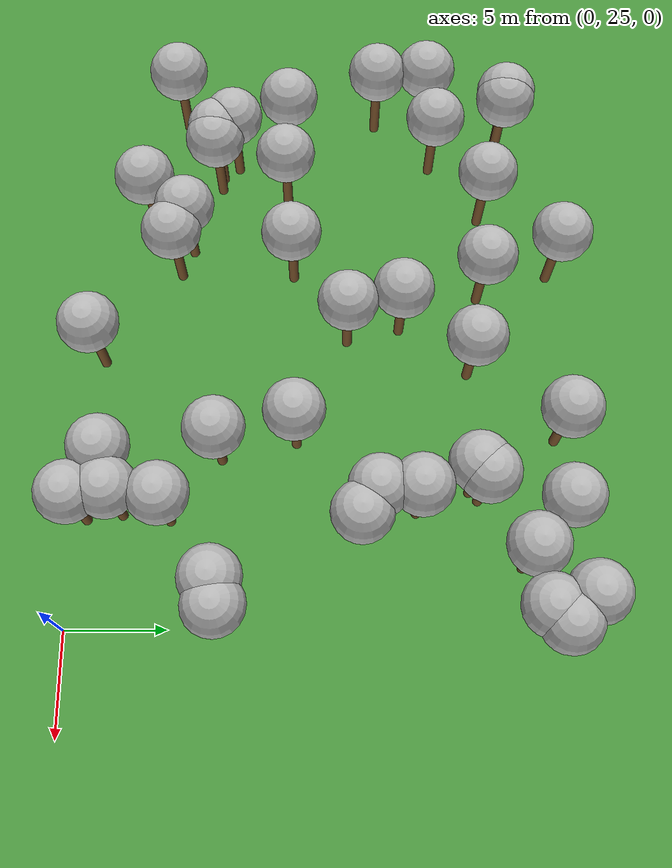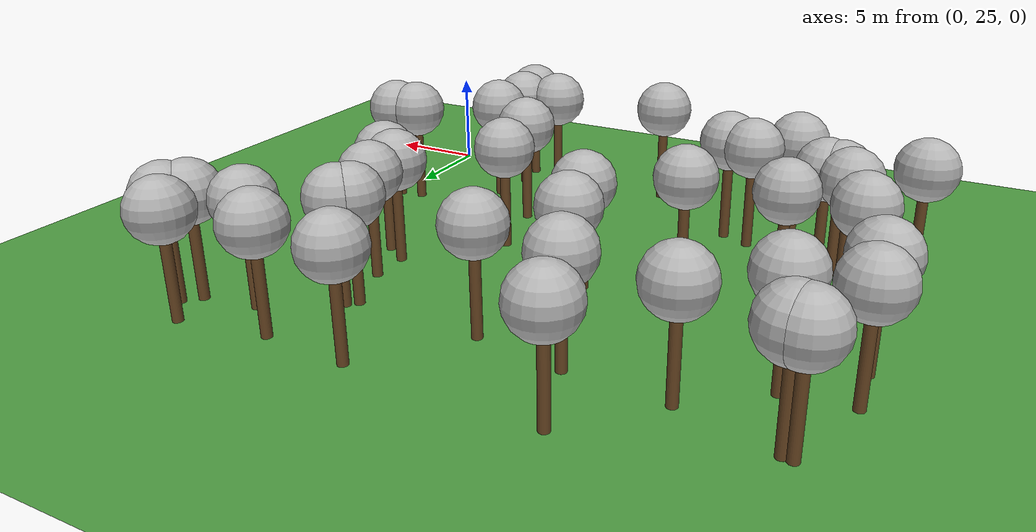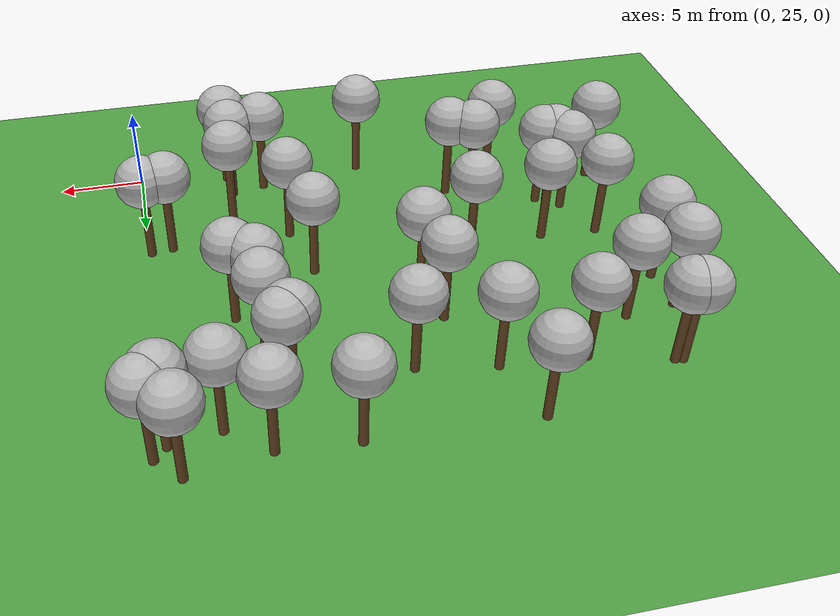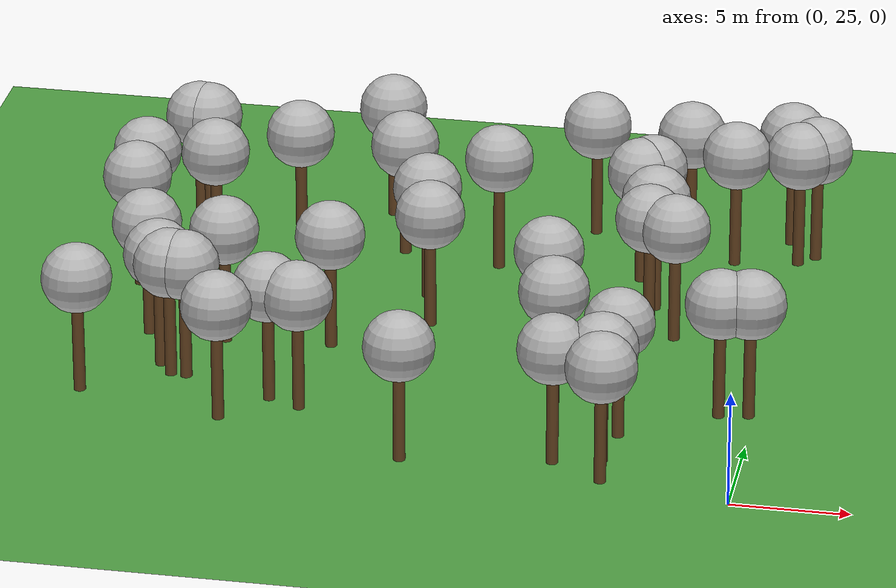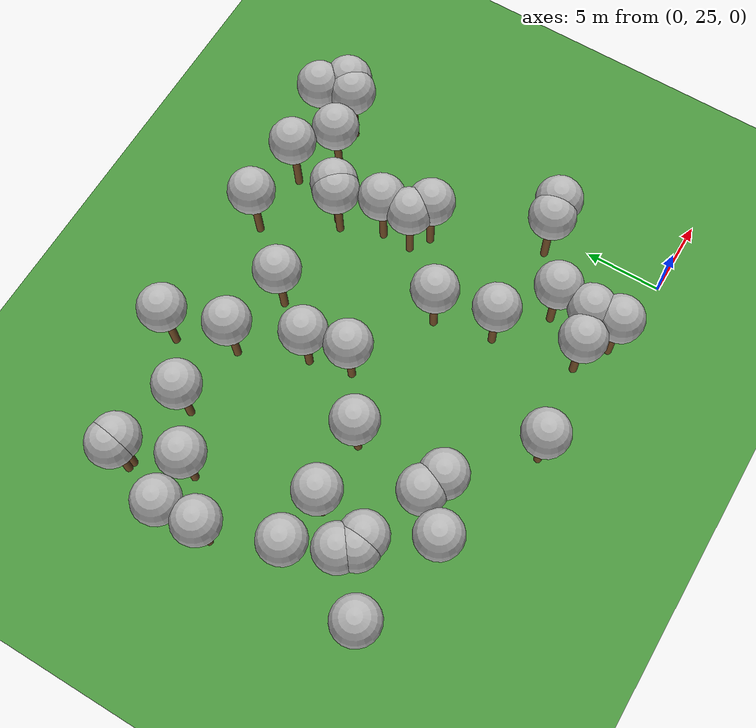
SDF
<sdf version="1.5">
 <world name="default">
  <model name="tree_simple492">
   <static>1</static>
   <link name="link">
    <pose>0 0 0.1 0 -0 0</pose>
    <collision name="collision_trunk">
     <pose>0 0 2 0 -0 0</pose>
     <geometry><cylinder><radius>0.25</radius><length>4</length></cylinder></geometry>
    </collision>
    <collision name="collision_treetop">
     <pose>0 0 5.2 0 -0 0</pose>
     <geometry><sphere><radius>1.5</radius></sphere></geometry>
    </collision>
    <visual name="trunk">
     <pose>0 0 2 0 -0 0</pose>
     <geometry><cylinder><radius>0.25</radius><length>4</length></cylinder></geometry>
     <material>
      <script>
       <uri>model://tree_simple/scripts</uri>
       <uri>model://tree_simple/materials/textures</uri>
       <name>TreeSimple/Trunk</name>
      </script>
     </material>
    </visual>
    <visual name="treetop">
     <pose>0 0 5.2 0 -0 0</pose>
     <geometry><sphere><radius>1.5</radius></sphere></geometry>
     <material>
      <script>
       <uri>model://tree_simple/scripts</uri>
       <uri>model://tree_simple/materials/textures</uri>
       <name>TreeSimple/Treetop</name>
      </script>
     </material>
    </visual>
   </link>
   <pose>-7.60604313382 27.1336498888 0 0 -0 0</pose>
  </model>
  <model name="tree_simple483">
   <static>1</static>
   <link name="link">
    <pose>0 0 0.1 0 -0 0</pose>
    <collision name="collision_trunk">
     <pose>0 0 2 0 -0 0</pose>
     <geometry><cylinder><radius>0.25</radius><length>4</length></cylinder></geometry>
    </collision>
    <collision name="collision_treetop">
     <pose>0 0 5.2 0 -0 0</pose>
     <geometry><sphere><radius>1.5</radius></sphere></geometry>
    </collision>
    <visual name="trunk">
     <pose>0 0 2 0 -0 0</pose>
     <geometry><cylinder><radius>0.25</radius><length>4</length></cylinder></geometry>
     <material>
      <script>
       <uri>model://tree_simple/scripts</uri>
       <uri>model://tree_simple/materials/textures</uri>
       <name>TreeSimple/Trunk</name>
      </script>
     </material>
    </visual>
    <visual name="treetop">
     <pose>0 0 5.2 0 -0 0</pose>
     <geometry><sphere><radius>1.5</radius></sphere></geometry>
     <material>
      <script>
       <uri>model://tree_simple/scripts</uri>
       <uri>model://tree_simple/materials/textures</uri>
       <name>TreeSimple/Treetop</name>
      </script>
     </material>
    </visual>
   </link>
   <pose>-6.65162129766 44.7613363002 0 0 -0 0</pose>
  </model>
  <model name="tree_simple477">
   <static>1</static>
   <link name="link">
    <pose>0 0 0.1 0 -0 0</pose>
    <collision name="collision_trunk">
     <pose>0 0 2 0 -0 0</pose>
     <geometry><cylinder><radius>0.25</radius><length>4</length></cylinder></geometry>
    </collision>
    <collision name="collision_treetop">
     <pose>0 0 5.2 0 -0 0</pose>
     <geometry><sphere><radius>1.5</radius></sphere></geometry>
    </collision>
    <visual name="trunk">
     <pose>0 0 2 0 -0 0</pose>
     <geometry><cylinder><radius>0.25</radius><length>4</length></cylinder></geometry>
     <material>
      <script>
       <uri>model://tree_simple/scripts</uri>
       <uri>model://tree_simple/materials/textures</uri>
       <name>TreeSimple/Trunk</name>
      </script>
     </material>
    </visual>
    <visual name="treetop">
     <pose>0 0 5.2 0 -0 0</pose>
     <geometry><sphere><radius>1.5</radius></sphere></geometry>
     <material>
      <script>
       <uri>model://tree_simple/scripts</uri>
       <uri>model://tree_simple/materials/textures</uri>
       <name>TreeSimple/Treetop</name>
      </script>
     </material>
    </visual>
   </link>
   <pose>-0.22927085135 32.6495918535 0 0 -0 0</pose>
  </model>
  <model name="tree_simple446">
   <static>1</static>
   <link name="link">
    <pose>0 0 0.1 0 -0 0</pose>
    <collision name="collision_trunk">
     <pose>0 0 2 0 -0 0</pose>
     <geometry><cylinder><radius>0.25</radius><length>4</length></cylinder></geometry>
    </collision>
    <collision name="collision_treetop">
     <pose>0 0 5.2 0 -0 0</pose>
     <geometry><sphere><radius>1.5</radius></sphere></geometry>
    </collision>
    <visual name="trunk">
     <pose>0 0 2 0 -0 0</pose>
     <geometry><cylinder><radius>0.25</radius><length>4</length></cylinder></geometry>
     <material>
      <script>
       <uri>model://tree_simple/scripts</uri>
       <uri>model://tree_simple/materials/textures</uri>
       <name>TreeSimple/Trunk</name>
      </script>
     </material>
    </visual>
    <visual name="treetop">
     <pose>0 0 5.2 0 -0 0</pose>
     <geometry><sphere><radius>1.5</radius></sphere></geometry>
     <material>
      <script>
       <uri>model://tree_simple/scripts</uri>
       <uri>model://tree_simple/materials/textures</uri>
       <name>TreeSimple/Treetop</name>
      </script>
     </material>
    </visual>
   </link>
   <pose>-14.8873591434 38.8088683427 0 0 -0 0</pose>
  </model>
  <model name="tree_simple441">
   <static>1</static>
   <link name="link">
    <pose>0 0 0.1 0 -0 0</pose>
    <collision name="collision_trunk">
     <pose>0 0 2 0 -0 0</pose>
     <geometry><cylinder><radius>0.25</radius><length>4</length></cylinder></geometry>
    </collision>
    <collision name="collision_treetop">
     <pose>0 0 5.2 0 -0 0</pose>
     <geometry><sphere><radius>1.5</radius></sphere></geometry>
    </collision>
    <visual name="trunk">
     <pose>0 0 2 0 -0 0</pose>
     <geometry><cylinder><radius>0.25</radius><length>4</length></cylinder></geometry>
     <material>
      <script>
       <uri>model://tree_simple/scripts</uri>
       <uri>model://tree_simple/materials/textures</uri>
       <name>TreeSimple/Trunk</name>
      </script>
     </material>
    </visual>
    <visual name="treetop">
     <pose>0 0 5.2 0 -0 0</pose>
     <geometry><sphere><radius>1.5</radius></sphere></geometry>
     <material>
      <script>
       <uri>model://tree_simple/scripts</uri>
       <uri>model://tree_simple/materials/textures</uri>
       <name>TreeSimple/Treetop</name>
      </script>
     </material>
    </visual>
   </link>
   <pose>-25.4258718868 33.0017159702 0 0 -0 0</pose>
  </model>
  <model name="tree_simple436">
   <static>1</static>
   <link name="link">
    <pose>0 0 0.1 0 -0 0</pose>
    <collision name="collision_trunk">
     <pose>0 0 2 0 -0 0</pose>
     <geometry><cylinder><radius>0.25</radius><length>4</length></cylinder></geometry>
    </collision>
    <collision name="collision_treetop">
     <pose>0 0 5.2 0 -0 0</pose>
     <geometry><sphere><radius>1.5</radius></sphere></geometry>
    </collision>
    <visual name="trunk">
     <pose>0 0 2 0 -0 0</pose>
     <geometry><cylinder><radius>0.25</radius><length>4</length></cylinder></geometry>
     <material>
      <script>
       <uri>model://tree_simple/scripts</uri>
       <uri>model://tree_simple/materials/textures</uri>
       <name>TreeSimple/Trunk</name>
      </script>
     </material>
    </visual>
    <visual name="treetop">
     <pose>0 0 5.2 0 -0 0</pose>
     <geometry><sphere><radius>1.5</radius></sphere></geometry>
     <material>
      <script>
       <uri>model://tree_simple/scripts</uri>
       <uri>model://tree_simple/materials/textures</uri>
       <name>TreeSimple/Treetop</name>
      </script>
     </material>
    </visual>
   </link>
   <pose>-12.9773602363 44.9895309953 0 0 -0 0</pose>
  </model>
  <model name="tree_simple425">
   <static>1</static>
   <link name="link">
    <pose>0 0 0.1 0 -0 0</pose>
    <collision name="collision_trunk">
     <pose>0 0 2 0 -0 0</pose>
     <geometry><cylinder><radius>0.25</radius><length>4</length></cylinder></geometry>
    </collision>
    <collision name="collision_treetop">
     <pose>0 0 5.2 0 -0 0</pose>
     <geometry><sphere><radius>1.5</radius></sphere></geometry>
    </collision>
    <visual name="trunk">
     <pose>0 0 2 0 -0 0</pose>
     <geometry><cylinder><radius>0.25</radius><length>4</length></cylinder></geometry>
     <material>
      <script>
       <uri>model://tree_simple/scripts</uri>
       <uri>model://tree_simple/materials/textures</uri>
       <name>TreeSimple/Trunk</name>
      </script>
     </material>
    </visual>
    <visual name="treetop">
     <pose>0 0 5.2 0 -0 0</pose>
     <geometry><sphere><radius>1.5</radius></sphere></geometry>
     <material>
      <script>
       <uri>model://tree_simple/scripts</uri>
       <uri>model://tree_simple/materials/textures</uri>
       <name>TreeSimple/Treetop</name>
      </script>
     </material>
    </visual>
   </link>
   <pose>-9.294152574 36.1907172759 0 0 -0 0</pose>
  </model>
  <model name="tree_simple409">
   <static>1</static>
   <link name="link">
    <pose>0 0 0.1 0 -0 0</pose>
    <collision name="collision_trunk">
     <pose>0 0 2 0 -0 0</pose>
     <geometry><cylinder><radius>0.25</radius><length>4</length></cylinder></geometry>
    </collision>
    <collision name="collision_treetop">
     <pose>0 0 5.2 0 -0 0</pose>
     <geometry><sphere><radius>1.5</radius></sphere></geometry>
    </collision>
    <visual name="trunk">
     <pose>0 0 2 0 -0 0</pose>
     <geometry><cylinder><radius>0.25</radius><length>4</length></cylinder></geometry>
     <material>
      <script>
       <uri>model://tree_simple/scripts</uri>
       <uri>model://tree_simple/materials/textures</uri>
       <name>TreeSimple/Trunk</name>
      </script>
     </material>
    </visual>
    <visual name="treetop">
     <pose>0 0 5.2 0 -0 0</pose>
     <geometry><sphere><radius>1.5</radius></sphere></geometry>
     <material>
      <script>
       <uri>model://tree_simple/scripts</uri>
       <uri>model://tree_simple/materials/textures</uri>
       <name>TreeSimple/Treetop</name>
      </script>
     </material>
    </visual>
   </link>
   <pose>-23.2045481925 35.7189479207 0 0 -0 0</pose>
  </model>
  <model name="tree_simple398">
   <static>1</static>
   <link name="link">
    <pose>0 0 0.1 0 -0 0</pose>
    <collision name="collision_trunk">
     <pose>0 0 2 0 -0 0</pose>
     <geometry><cylinder><radius>0.25</radius><length>4</length></cylinder></geometry>
    </collision>
    <collision name="collision_treetop">
     <pose>0 0 5.2 0 -0 0</pose>
     <geometry><sphere><radius>1.5</radius></sphere></geometry>
    </collision>
    <visual name="trunk">
     <pose>0 0 2 0 -0 0</pose>
     <geometry><cylinder><radius>0.25</radius><length>4</length></cylinder></geometry>
     <material>
      <script>
       <uri>model://tree_simple/scripts</uri>
       <uri>model://tree_simple/materials/textures</uri>
       <name>TreeSimple/Trunk</name>
      </script>
     </material>
    </visual>
    <visual name="treetop">
     <pose>0 0 5.2 0 -0 0</pose>
     <geometry><sphere><radius>1.5</radius></sphere></geometry>
     <material>
      <script>
       <uri>model://tree_simple/scripts</uri>
       <uri>model://tree_simple/materials/textures</uri>
       <name>TreeSimple/Treetop</name>
      </script>
     </material>
    </visual>
   </link>
   <pose>-5.63129043723 27.5985943182 0 0 -0 0</pose>
  </model>
  <model name="tree_simple359">
   <static>1</static>
   <link name="link">
    <pose>0 0 0.1 0 -0 0</pose>
    <collision name="collision_trunk">
     <pose>0 0 2 0 -0 0</pose>
     <geometry><cylinder><radius>0.25</radius><length>4</length></cylinder></geometry>
    </collision>
    <collision name="collision_treetop">
     <pose>0 0 5.2 0 -0 0</pose>
     <geometry><sphere><radius>1.5</radius></sphere></geometry>
    </collision>
    <visual name="trunk">
     <pose>0 0 2 0 -0 0</pose>
     <geometry><cylinder><radius>0.25</radius><length>4</length></cylinder></geometry>
     <material>
      <script>
       <uri>model://tree_simple/scripts</uri>
       <uri>model://tree_simple/materials/textures</uri>
       <name>TreeSimple/Trunk</name>
      </script>
     </material>
    </visual>
    <visual name="treetop">
     <pose>0 0 5.2 0 -0 0</pose>
     <geometry><sphere><radius>1.5</radius></sphere></geometry>
     <material>
      <script>
       <uri>model://tree_simple/scripts</uri>
       <uri>model://tree_simple/materials/textures</uri>
       <name>TreeSimple/Treetop</name>
      </script>
     </material>
    </visual>
   </link>
   <pose>-20.2372130322 30.6626507403 0 0 -0 0</pose>
  </model>
  <model name="tree_simple358">
   <static>1</static>
   <link name="link">
    <pose>0 0 0.1 0 -0 0</pose>
    <collision name="collision_trunk">
     <pose>0 0 2 0 -0 0</pose>
     <geometry><cylinder><radius>0.25</radius><length>4</length></cylinder></geometry>
    </collision>
    <collision name="collision_treetop">
     <pose>0 0 5.2 0 -0 0</pose>
     <geometry><sphere><radius>1.5</radius></sphere></geometry>
    </collision>
    <visual name="trunk">
     <pose>0 0 2 0 -0 0</pose>
     <geometry><cylinder><radius>0.25</radius><length>4</length></cylinder></geometry>
     <material>
      <script>
       <uri>model://tree_simple/scripts</uri>
       <uri>model://tree_simple/materials/textures</uri>
       <name>TreeSimple/Trunk</name>
      </script>
     </material>
    </visual>
    <visual name="treetop">
     <pose>0 0 5.2 0 -0 0</pose>
     <geometry><sphere><radius>1.5</radius></sphere></geometry>
     <material>
      <script>
       <uri>model://tree_simple/scripts</uri>
       <uri>model://tree_simple/materials/textures</uri>
       <name>TreeSimple/Treetop</name>
      </script>
     </material>
    </visual>
   </link>
   <pose>-28.1059387966 40.529489556 0 0 -0 0</pose>
  </model>
  <model name="tree_simple356">
   <static>1</static>
   <link name="link">
    <pose>0 0 0.1 0 -0 0</pose>
    <collision name="collision_trunk">
     <pose>0 0 2 0 -0 0</pose>
     <geometry><cylinder><radius>0.25</radius><length>4</length></cylinder></geometry>
    </collision>
    <collision name="collision_treetop">
     <pose>0 0 5.2 0 -0 0</pose>
     <geometry><sphere><radius>1.5</radius></sphere></geometry>
    </collision>
    <visual name="trunk">
     <pose>0 0 2 0 -0 0</pose>
     <geometry><cylinder><radius>0.25</radius><length>4</length></cylinder></geometry>
     <material>
      <script>
       <uri>model://tree_simple/scripts</uri>
       <uri>model://tree_simple/materials/textures</uri>
       <name>TreeSimple/Trunk</name>
      </script>
     </material>
    </visual>
    <visual name="treetop">
     <pose>0 0 5.2 0 -0 0</pose>
     <geometry><sphere><radius>1.5</radius></sphere></geometry>
     <material>
      <script>
       <uri>model://tree_simple/scripts</uri>
       <uri>model://tree_simple/materials/textures</uri>
       <name>TreeSimple/Treetop</name>
      </script>
     </material>
    </visual>
   </link>
   <pose>-2.83030100633 47.164879459 0 0 -0 0</pose>
  </model>
  <model name="tree_simple353">
   <static>1</static>
   <link name="link">
    <pose>0 0 0.1 0 -0 0</pose>
    <collision name="collision_trunk">
     <pose>0 0 2 0 -0 0</pose>
     <geometry><cylinder><radius>0.25</radius><length>4</length></cylinder></geometry>
    </collision>
    <collision name="collision_treetop">
     <pose>0 0 5.2 0 -0 0</pose>
     <geometry><sphere><radius>1.5</radius></sphere></geometry>
    </collision>
    <visual name="trunk">
     <pose>0 0 2 0 -0 0</pose>
     <geometry><cylinder><radius>0.25</radius><length>4</length></cylinder></geometry>
     <material>
      <script>
       <uri>model://tree_simple/scripts</uri>
       <uri>model://tree_simple/materials/textures</uri>
       <name>TreeSimple/Trunk</name>
      </script>
     </material>
    </visual>
    <visual name="treetop">
     <pose>0 0 5.2 0 -0 0</pose>
     <geometry><sphere><radius>1.5</radius></sphere></geometry>
     <material>
      <script>
       <uri>model://tree_simple/scripts</uri>
       <uri>model://tree_simple/materials/textures</uri>
       <name>TreeSimple/Treetop</name>
      </script>
     </material>
    </visual>
   </link>
   <pose>-8.45318639894 32.4449291469 0 0 -0 0</pose>
  </model>
  <model name="tree_simple343">
   <static>1</static>
   <link name="link">
    <pose>0 0 0.1 0 -0 0</pose>
    <collision name="collision_trunk">
     <pose>0 0 2 0 -0 0</pose>
     <geometry><cylinder><radius>0.25</radius><length>4</length></cylinder></geometry>
    </collision>
    <collision name="collision_treetop">
     <pose>0 0 5.2 0 -0 0</pose>
     <geometry><sphere><radius>1.5</radius></sphere></geometry>
    </collision>
    <visual name="trunk">
     <pose>0 0 2 0 -0 0</pose>
     <geometry><cylinder><radius>0.25</radius><length>4</length></cylinder></geometry>
     <material>
      <script>
       <uri>model://tree_simple/scripts</uri>
       <uri>model://tree_simple/materials/textures</uri>
       <name>TreeSimple/Trunk</name>
      </script>
     </material>
    </visual>
    <visual name="treetop">
     <pose>0 0 5.2 0 -0 0</pose>
     <geometry><sphere><radius>1.5</radius></sphere></geometry>
     <material>
      <script>
       <uri>model://tree_simple/scripts</uri>
       <uri>model://tree_simple/materials/textures</uri>
       <name>TreeSimple/Treetop</name>
      </script>
     </material>
    </visual>
   </link>
   <pose>-17.2958932822 45.7138384605 0 0 -0 0</pose>
  </model>
  <model name="tree_simple342">
   <static>1</static>
   <link name="link">
    <pose>0 0 0.1 0 -0 0</pose>
    <collision name="collision_trunk">
     <pose>0 0 2 0 -0 0</pose>
     <geometry><cylinder><radius>0.25</radius><length>4</length></cylinder></geometry>
    </collision>
    <collision name="collision_treetop">
     <pose>0 0 5.2 0 -0 0</pose>
     <geometry><sphere><radius>1.5</radius></sphere></geometry>
    </collision>
    <visual name="trunk">
     <pose>0 0 2 0 -0 0</pose>
     <geometry><cylinder><radius>0.25</radius><length>4</length></cylinder></geometry>
     <material>
      <script>
       <uri>model://tree_simple/scripts</uri>
       <uri>model://tree_simple/materials/textures</uri>
       <name>TreeSimple/Trunk</name>
      </script>
     </material>
    </visual>
    <visual name="treetop">
     <pose>0 0 5.2 0 -0 0</pose>
     <geometry><sphere><radius>1.5</radius></sphere></geometry>
     <material>
      <script>
       <uri>model://tree_simple/scripts</uri>
       <uri>model://tree_simple/materials/textures</uri>
       <name>TreeSimple/Treetop</name>
      </script>
     </material>
    </visual>
   </link>
   <pose>-22.0369501139 46.0033918911 0 0 -0 0</pose>
  </model>
  <model name="tree_simple310">
   <static>1</static>
   <link name="link">
    <pose>0 0 0.1 0 -0 0</pose>
    <collision name="collision_trunk">
     <pose>0 0 2 0 -0 0</pose>
     <geometry><cylinder><radius>0.25</radius><length>4</length></cylinder></geometry>
    </collision>
    <collision name="collision_treetop">
     <pose>0 0 5.2 0 -0 0</pose>
     <geometry><sphere><radius>1.5</radius></sphere></geometry>
    </collision>
    <visual name="trunk">
     <pose>0 0 2 0 -0 0</pose>
     <geometry><cylinder><radius>0.25</radius><length>4</length></cylinder></geometry>
     <material>
      <script>
       <uri>model://tree_simple/scripts</uri>
       <uri>model://tree_simple/materials/textures</uri>
       <name>TreeSimple/Trunk</name>
      </script>
     </material>
    </visual>
    <visual name="treetop">
     <pose>0 0 5.2 0 -0 0</pose>
     <geometry><sphere><radius>1.5</radius></sphere></geometry>
     <material>
      <script>
       <uri>model://tree_simple/scripts</uri>
       <uri>model://tree_simple/materials/textures</uri>
       <name>TreeSimple/Treetop</name>
      </script>
     </material>
    </visual>
   </link>
   <pose>-24.1249967054 32.1060106323 0 0 -0 0</pose>
  </model>
  <model name="tree_simple302">
   <static>1</static>
   <link name="link">
    <pose>0 0 0.1 0 -0 0</pose>
    <collision name="collision_trunk">
     <pose>0 0 2 0 -0 0</pose>
     <geometry><cylinder><radius>0.25</radius><length>4</length></cylinder></geometry>
    </collision>
    <collision name="collision_treetop">
     <pose>0 0 5.2 0 -0 0</pose>
     <geometry><sphere><radius>1.5</radius></sphere></geometry>
    </collision>
    <visual name="trunk">
     <pose>0 0 2 0 -0 0</pose>
     <geometry><cylinder><radius>0.25</radius><length>4</length></cylinder></geometry>
     <material>
      <script>
       <uri>model://tree_simple/scripts</uri>
       <uri>model://tree_simple/materials/textures</uri>
       <name>TreeSimple/Trunk</name>
      </script>
     </material>
    </visual>
    <visual name="treetop">
     <pose>0 0 5.2 0 -0 0</pose>
     <geometry><sphere><radius>1.5</radius></sphere></geometry>
     <material>
      <script>
       <uri>model://tree_simple/scripts</uri>
       <uri>model://tree_simple/materials/textures</uri>
       <name>TreeSimple/Treetop</name>
      </script>
     </material>
    </visual>
   </link>
   <pose>-4.36833306423 39.3035065939 0 0 -0 0</pose>
  </model>
  <model name="tree_simple299">
   <static>1</static>
   <link name="link">
    <pose>0 0 0.1 0 -0 0</pose>
    <collision name="collision_trunk">
     <pose>0 0 2 0 -0 0</pose>
     <geometry><cylinder><radius>0.25</radius><length>4</length></cylinder></geometry>
    </collision>
    <collision name="collision_treetop">
     <pose>0 0 5.2 0 -0 0</pose>
     <geometry><sphere><radius>1.5</radius></sphere></geometry>
    </collision>
    <visual name="trunk">
     <pose>0 0 2 0 -0 0</pose>
     <geometry><cylinder><radius>0.25</radius><length>4</length></cylinder></geometry>
     <material>
      <script>
       <uri>model://tree_simple/scripts</uri>
       <uri>model://tree_simple/materials/textures</uri>
       <name>TreeSimple/Trunk</name>
      </script>
     </material>
    </visual>
    <visual name="treetop">
     <pose>0 0 5.2 0 -0 0</pose>
     <geometry><sphere><radius>1.5</radius></sphere></geometry>
     <material>
      <script>
       <uri>model://tree_simple/scripts</uri>
       <uri>model://tree_simple/materials/textures</uri>
       <name>TreeSimple/Treetop</name>
      </script>
     </material>
    </visual>
   </link>
   <pose>-1.46806320409 32.459422197 0 0 -0 0</pose>
  </model>
  <model name="tree_simple273">
   <static>1</static>
   <link name="link">
    <pose>0 0 0.1 0 -0 0</pose>
    <collision name="collision_trunk">
     <pose>0 0 2 0 -0 0</pose>
     <geometry><cylinder><radius>0.25</radius><length>4</length></cylinder></geometry>
    </collision>
    <collision name="collision_treetop">
     <pose>0 0 5.2 0 -0 0</pose>
     <geometry><sphere><radius>1.5</radius></sphere></geometry>
    </collision>
    <visual name="trunk">
     <pose>0 0 2 0 -0 0</pose>
     <geometry><cylinder><radius>0.25</radius><length>4</length></cylinder></geometry>
     <material>
      <script>
       <uri>model://tree_simple/scripts</uri>
       <uri>model://tree_simple/materials/textures</uri>
       <name>TreeSimple/Trunk</name>
      </script>
     </material>
    </visual>
    <visual name="treetop">
     <pose>0 0 5.2 0 -0 0</pose>
     <geometry><sphere><radius>1.5</radius></sphere></geometry>
     <material>
      <script>
       <uri>model://tree_simple/scripts</uri>
       <uri>model://tree_simple/materials/textures</uri>
       <name>TreeSimple/Treetop</name>
      </script>
     </material>
    </visual>
   </link>
   <pose>0.615452914857 48.3188405116 0 0 -0 0</pose>
  </model>
  <model name="tree_simple271">
   <static>1</static>
   <link name="link">
    <pose>0 0 0.1 0 -0 0</pose>
    <collision name="collision_trunk">
     <pose>0 0 2 0 -0 0</pose>
     <geometry><cylinder><radius>0.25</radius><length>4</length></cylinder></geometry>
    </collision>
    <collision name="collision_treetop">
     <pose>0 0 5.2 0 -0 0</pose>
     <geometry><sphere><radius>1.5</radius></sphere></geometry>
    </collision>
    <visual name="trunk">
     <pose>0 0 2 0 -0 0</pose>
     <geometry><cylinder><radius>0.25</radius><length>4</length></cylinder></geometry>
     <material>
      <script>
       <uri>model://tree_simple/scripts</uri>
       <uri>model://tree_simple/materials/textures</uri>
       <name>TreeSimple/Trunk</name>
      </script>
     </material>
    </visual>
    <visual name="treetop">
     <pose>0 0 5.2 0 -0 0</pose>
     <geometry><sphere><radius>1.5</radius></sphere></geometry>
     <material>
      <script>
       <uri>model://tree_simple/scripts</uri>
       <uri>model://tree_simple/materials/textures</uri>
       <name>TreeSimple/Treetop</name>
      </script>
     </material>
    </visual>
   </link>
   <pose>-18.5426783436 49.4999190652 0 0 -0 0</pose>
  </model>
  <model name="tree_simple264">
   <static>1</static>
   <link name="link">
    <pose>0 0 0.1 0 -0 0</pose>
    <collision name="collision_trunk">
     <pose>0 0 2 0 -0 0</pose>
     <geometry><cylinder><radius>0.25</radius><length>4</length></cylinder></geometry>
    </collision>
    <collision name="collision_treetop">
     <pose>0 0 5.2 0 -0 0</pose>
     <geometry><sphere><radius>1.5</radius></sphere></geometry>
    </collision>
    <visual name="trunk">
     <pose>0 0 2 0 -0 0</pose>
     <geometry><cylinder><radius>0.25</radius><length>4</length></cylinder></geometry>
     <material>
      <script>
       <uri>model://tree_simple/scripts</uri>
       <uri>model://tree_simple/materials/textures</uri>
       <name>TreeSimple/Trunk</name>
      </script>
     </material>
    </visual>
    <visual name="treetop">
     <pose>0 0 5.2 0 -0 0</pose>
     <geometry><sphere><radius>1.5</radius></sphere></geometry>
     <material>
      <script>
       <uri>model://tree_simple/scripts</uri>
       <uri>model://tree_simple/materials/textures</uri>
       <name>TreeSimple/Treetop</name>
      </script>
     </material>
    </visual>
   </link>
   <pose>-26.5960769864 35.8751081016 0 0 -0 0</pose>
  </model>
  <model name="tree_simple248">
   <static>1</static>
   <link name="link">
    <pose>0 0 0.1 0 -0 0</pose>
    <collision name="collision_trunk">
     <pose>0 0 2 0 -0 0</pose>
     <geometry><cylinder><radius>0.25</radius><length>4</length></cylinder></geometry>
    </collision>
    <collision name="collision_treetop">
     <pose>0 0 5.2 0 -0 0</pose>
     <geometry><sphere><radius>1.5</radius></sphere></geometry>
    </collision>
    <visual name="trunk">
     <pose>0 0 2 0 -0 0</pose>
     <geometry><cylinder><radius>0.25</radius><length>4</length></cylinder></geometry>
     <material>
      <script>
       <uri>model://tree_simple/scripts</uri>
       <uri>model://tree_simple/materials/textures</uri>
       <name>TreeSimple/Trunk</name>
      </script>
     </material>
    </visual>
    <visual name="treetop">
     <pose>0 0 5.2 0 -0 0</pose>
     <geometry><sphere><radius>1.5</radius></sphere></geometry>
     <material>
      <script>
       <uri>model://tree_simple/scripts</uri>
       <uri>model://tree_simple/materials/textures</uri>
       <name>TreeSimple/Treetop</name>
      </script>
     </material>
    </visual>
   </link>
   <pose>-9.31615496508 49.2286778513 0 0 -0 0</pose>
  </model>
  <model name="tree_simple236">
   <static>1</static>
   <link name="link">
    <pose>0 0 0.1 0 -0 0</pose>
    <collision name="collision_trunk">
     <pose>0 0 2 0 -0 0</pose>
     <geometry><cylinder><radius>0.25</radius><length>4</length></cylinder></geometry>
    </collision>
    <collision name="collision_treetop">
     <pose>0 0 5.2 0 -0 0</pose>
     <geometry><sphere><radius>1.5</radius></sphere></geometry>
    </collision>
    <visual name="trunk">
     <pose>0 0 2 0 -0 0</pose>
     <geometry><cylinder><radius>0.25</radius><length>4</length></cylinder></geometry>
     <material>
      <script>
       <uri>model://tree_simple/scripts</uri>
       <uri>model://tree_simple/materials/textures</uri>
       <name>TreeSimple/Trunk</name>
      </script>
     </material>
    </visual>
    <visual name="treetop">
     <pose>0 0 5.2 0 -0 0</pose>
     <geometry><sphere><radius>1.5</radius></sphere></geometry>
     <material>
      <script>
       <uri>model://tree_simple/scripts</uri>
       <uri>model://tree_simple/materials/textures</uri>
       <name>TreeSimple/Treetop</name>
      </script>
     </material>
    </visual>
   </link>
   <pose>-28.2556560036 43.088579588 0 0 -0 0</pose>
  </model>
  <model name="tree_simple224">
   <static>1</static>
   <link name="link">
    <pose>0 0 0.1 0 -0 0</pose>
    <collision name="collision_trunk">
     <pose>0 0 2 0 -0 0</pose>
     <geometry><cylinder><radius>0.25</radius><length>4</length></cylinder></geometry>
    </collision>
    <collision name="collision_treetop">
     <pose>0 0 5.2 0 -0 0</pose>
     <geometry><sphere><radius>1.5</radius></sphere></geometry>
    </collision>
    <visual name="trunk">
     <pose>0 0 2 0 -0 0</pose>
     <geometry><cylinder><radius>0.25</radius><length>4</length></cylinder></geometry>
     <material>
      <script>
       <uri>model://tree_simple/scripts</uri>
       <uri>model://tree_simple/materials/textures</uri>
       <name>TreeSimple/Trunk</name>
      </script>
     </material>
    </visual>
    <visual name="treetop">
     <pose>0 0 5.2 0 -0 0</pose>
     <geometry><sphere><radius>1.5</radius></sphere></geometry>
     <material>
      <script>
       <uri>model://tree_simple/scripts</uri>
       <uri>model://tree_simple/materials/textures</uri>
       <name>TreeSimple/Treetop</name>
      </script>
     </material>
    </visual>
   </link>
   <pose>-25.303745436 43.465040084 0 0 -0 0</pose>
  </model>
  <model name="tree_simple213">
   <static>1</static>
   <link name="link">
    <pose>0 0 0.1 0 -0 0</pose>
    <collision name="collision_trunk">
     <pose>0 0 2 0 -0 0</pose>
     <geometry><cylinder><radius>0.25</radius><length>4</length></cylinder></geometry>
    </collision>
    <collision name="collision_treetop">
     <pose>0 0 5.2 0 -0 0</pose>
     <geometry><sphere><radius>1.5</radius></sphere></geometry>
    </collision>
    <visual name="trunk">
     <pose>0 0 2 0 -0 0</pose>
     <geometry><cylinder><radius>0.25</radius><length>4</length></cylinder></geometry>
     <material>
      <script>
       <uri>model://tree_simple/scripts</uri>
       <uri>model://tree_simple/materials/textures</uri>
       <name>TreeSimple/Trunk</name>
      </script>
     </material>
    </visual>
    <visual name="treetop">
     <pose>0 0 5.2 0 -0 0</pose>
     <geometry><sphere><radius>1.5</radius></sphere></geometry>
     <material>
      <script>
       <uri>model://tree_simple/scripts</uri>
       <uri>model://tree_simple/materials/textures</uri>
       <name>TreeSimple/Treetop</name>
      </script>
     </material>
    </visual>
   </link>
   <pose>-6.21217405129 45.1783482454 0 0 -0 0</pose>
  </model>
  <model name="tree_simple205">
   <static>1</static>
   <link name="link">
    <pose>0 0 0.1 0 -0 0</pose>
    <collision name="collision_trunk">
     <pose>0 0 2 0 -0 0</pose>
     <geometry><cylinder><radius>0.25</radius><length>4</length></cylinder></geometry>
    </collision>
    <collision name="collision_treetop">
     <pose>0 0 5.2 0 -0 0</pose>
     <geometry><sphere><radius>1.5</radius></sphere></geometry>
    </collision>
    <visual name="trunk">
     <pose>0 0 2 0 -0 0</pose>
     <geometry><cylinder><radius>0.25</radius><length>4</length></cylinder></geometry>
     <material>
      <script>
       <uri>model://tree_simple/scripts</uri>
       <uri>model://tree_simple/materials/textures</uri>
       <name>TreeSimple/Trunk</name>
      </script>
     </material>
    </visual>
    <visual name="treetop">
     <pose>0 0 5.2 0 -0 0</pose>
     <geometry><sphere><radius>1.5</radius></sphere></geometry>
     <material>
      <script>
       <uri>model://tree_simple/scripts</uri>
       <uri>model://tree_simple/materials/textures</uri>
       <name>TreeSimple/Treetop</name>
      </script>
     </material>
    </visual>
   </link>
   <pose>-28.261168219 30.0880019851 0 0 -0 0</pose>
  </model>
  <model name="tree_simple184">
   <static>1</static>
   <link name="link">
    <pose>0 0 0.1 0 -0 0</pose>
    <collision name="collision_trunk">
     <pose>0 0 2 0 -0 0</pose>
     <geometry><cylinder><radius>0.25</radius><length>4</length></cylinder></geometry>
    </collision>
    <collision name="collision_treetop">
     <pose>0 0 5.2 0 -0 0</pose>
     <geometry><sphere><radius>1.5</radius></sphere></geometry>
    </collision>
    <visual name="trunk">
     <pose>0 0 2 0 -0 0</pose>
     <geometry><cylinder><radius>0.25</radius><length>4</length></cylinder></geometry>
     <material>
      <script>
       <uri>model://tree_simple/scripts</uri>
       <uri>model://tree_simple/materials/textures</uri>
       <name>TreeSimple/Trunk</name>
      </script>
     </material>
    </visual>
    <visual name="treetop">
     <pose>0 0 5.2 0 -0 0</pose>
     <geometry><sphere><radius>1.5</radius></sphere></geometry>
     <material>
      <script>
       <uri>model://tree_simple/scripts</uri>
       <uri>model://tree_simple/materials/textures</uri>
       <name>TreeSimple/Treetop</name>
      </script>
     </material>
    </visual>
   </link>
   <pose>-0.656302905273 49.6633789535 0 0 -0 0</pose>
  </model>
  <model name="tree_simple183">
   <static>1</static>
   <link name="link">
    <pose>0 0 0.1 0 -0 0</pose>
    <collision name="collision_trunk">
     <pose>0 0 2 0 -0 0</pose>
     <geometry><cylinder><radius>0.25</radius><length>4</length></cylinder></geometry>
    </collision>
    <collision name="collision_treetop">
     <pose>0 0 5.2 0 -0 0</pose>
     <geometry><sphere><radius>1.5</radius></sphere></geometry>
    </collision>
    <visual name="trunk">
     <pose>0 0 2 0 -0 0</pose>
     <geometry><cylinder><radius>0.25</radius><length>4</length></cylinder></geometry>
     <material>
      <script>
       <uri>model://tree_simple/scripts</uri>
       <uri>model://tree_simple/materials/textures</uri>
       <name>TreeSimple/Trunk</name>
      </script>
     </material>
    </visual>
    <visual name="treetop">
     <pose>0 0 5.2 0 -0 0</pose>
     <geometry><sphere><radius>1.5</radius></sphere></geometry>
     <material>
      <script>
       <uri>model://tree_simple/scripts</uri>
       <uri>model://tree_simple/materials/textures</uri>
       <name>TreeSimple/Treetop</name>
      </script>
     </material>
    </visual>
   </link>
   <pose>-24.8051767245 32.1734283562 0 0 -0 0</pose>
  </model>
  <model name="tree_simple161">
   <static>1</static>
   <link name="link">
    <pose>0 0 0.1 0 -0 0</pose>
    <collision name="collision_trunk">
     <pose>0 0 2 0 -0 0</pose>
     <geometry><cylinder><radius>0.25</radius><length>4</length></cylinder></geometry>
    </collision>
    <collision name="collision_treetop">
     <pose>0 0 5.2 0 -0 0</pose>
     <geometry><sphere><radius>1.5</radius></sphere></geometry>
    </collision>
    <visual name="trunk">
     <pose>0 0 2 0 -0 0</pose>
     <geometry><cylinder><radius>0.25</radius><length>4</length></cylinder></geometry>
     <material>
      <script>
       <uri>model://tree_simple/scripts</uri>
       <uri>model://tree_simple/materials/textures</uri>
       <name>TreeSimple/Trunk</name>
      </script>
     </material>
    </visual>
    <visual name="treetop">
     <pose>0 0 5.2 0 -0 0</pose>
     <geometry><sphere><radius>1.5</radius></sphere></geometry>
     <material>
      <script>
       <uri>model://tree_simple/scripts</uri>
       <uri>model://tree_simple/materials/textures</uri>
       <name>TreeSimple/Treetop</name>
      </script>
     </material>
    </visual>
   </link>
   <pose>-5.06082538739 48.9463602033 0 0 -0 0</pose>
  </model>
  <model name="tree_simple134">
   <static>1</static>
   <link name="link">
    <pose>0 0 0.1 0 -0 0</pose>
    <collision name="collision_trunk">
     <pose>0 0 2 0 -0 0</pose>
     <geometry><cylinder><radius>0.25</radius><length>4</length></cylinder></geometry>
    </collision>
    <collision name="collision_treetop">
     <pose>0 0 5.2 0 -0 0</pose>
     <geometry><sphere><radius>1.5</radius></sphere></geometry>
    </collision>
    <visual name="trunk">
     <pose>0 0 2 0 -0 0</pose>
     <geometry><cylinder><radius>0.25</radius><length>4</length></cylinder></geometry>
     <material>
      <script>
       <uri>model://tree_simple/scripts</uri>
       <uri>model://tree_simple/materials/textures</uri>
       <name>TreeSimple/Trunk</name>
      </script>
     </material>
    </visual>
    <visual name="treetop">
     <pose>0 0 5.2 0 -0 0</pose>
     <geometry><sphere><radius>1.5</radius></sphere></geometry>
     <material>
      <script>
       <uri>model://tree_simple/scripts</uri>
       <uri>model://tree_simple/materials/textures</uri>
       <name>TreeSimple/Treetop</name>
      </script>
     </material>
    </visual>
   </link>
   <pose>-15.5112177362 41.52540577 0 0 -0 0</pose>
  </model>
  <model name="tree_simple132">
   <static>1</static>
   <link name="link">
    <pose>0 0 0.1 0 -0 0</pose>
    <collision name="collision_trunk">
     <pose>0 0 2 0 -0 0</pose>
     <geometry><cylinder><radius>0.25</radius><length>4</length></cylinder></geometry>
    </collision>
    <collision name="collision_treetop">
     <pose>0 0 5.2 0 -0 0</pose>
     <geometry><sphere><radius>1.5</radius></sphere></geometry>
    </collision>
    <visual name="trunk">
     <pose>0 0 2 0 -0 0</pose>
     <geometry><cylinder><radius>0.25</radius><length>4</length></cylinder></geometry>
     <material>
      <script>
       <uri>model://tree_simple/scripts</uri>
       <uri>model://tree_simple/materials/textures</uri>
       <name>TreeSimple/Trunk</name>
      </script>
     </material>
    </visual>
    <visual name="treetop">
     <pose>0 0 5.2 0 -0 0</pose>
     <geometry><sphere><radius>1.5</radius></sphere></geometry>
     <material>
      <script>
       <uri>model://tree_simple/scripts</uri>
       <uri>model://tree_simple/materials/textures</uri>
       <name>TreeSimple/Treetop</name>
      </script>
     </material>
    </visual>
   </link>
   <pose>-26.8565746681 47.2141464963 0 0 -0 0</pose>
  </model>
  <model name="tree_simple116">
   <static>1</static>
   <link name="link">
    <pose>0 0 0.1 0 -0 0</pose>
    <collision name="collision_trunk">
     <pose>0 0 2 0 -0 0</pose>
     <geometry><cylinder><radius>0.25</radius><length>4</length></cylinder></geometry>
    </collision>
    <collision name="collision_treetop">
     <pose>0 0 5.2 0 -0 0</pose>
     <geometry><sphere><radius>1.5</radius></sphere></geometry>
    </collision>
    <visual name="trunk">
     <pose>0 0 2 0 -0 0</pose>
     <geometry><cylinder><radius>0.25</radius><length>4</length></cylinder></geometry>
     <material>
      <script>
       <uri>model://tree_simple/scripts</uri>
       <uri>model://tree_simple/materials/textures</uri>
       <name>TreeSimple/Trunk</name>
      </script>
     </material>
    </visual>
    <visual name="treetop">
     <pose>0 0 5.2 0 -0 0</pose>
     <geometry><sphere><radius>1.5</radius></sphere></geometry>
     <material>
      <script>
       <uri>model://tree_simple/scripts</uri>
       <uri>model://tree_simple/materials/textures</uri>
       <name>TreeSimple/Treetop</name>
      </script>
     </material>
    </visual>
   </link>
   <pose>-18.6791358841 36.0330135093 0 0 -0 0</pose>
  </model>
  <model name="tree_simple111">
   <static>1</static>
   <link name="link">
    <pose>0 0 0.1 0 -0 0</pose>
    <collision name="collision_trunk">
     <pose>0 0 2 0 -0 0</pose>
     <geometry><cylinder><radius>0.25</radius><length>4</length></cylinder></geometry>
    </collision>
    <collision name="collision_treetop">
     <pose>0 0 5.2 0 -0 0</pose>
     <geometry><sphere><radius>1.5</radius></sphere></geometry>
    </collision>
    <visual name="trunk">
     <pose>0 0 2 0 -0 0</pose>
     <geometry><cylinder><radius>0.25</radius><length>4</length></cylinder></geometry>
     <material>
      <script>
       <uri>model://tree_simple/scripts</uri>
       <uri>model://tree_simple/materials/textures</uri>
       <name>TreeSimple/Trunk</name>
      </script>
     </material>
    </visual>
    <visual name="treetop">
     <pose>0 0 5.2 0 -0 0</pose>
     <geometry><sphere><radius>1.5</radius></sphere></geometry>
     <material>
      <script>
       <uri>model://tree_simple/scripts</uri>
       <uri>model://tree_simple/materials/textures</uri>
       <name>TreeSimple/Treetop</name>
      </script>
     </material>
    </visual>
   </link>
   <pose>-26.4353630298 47.1515170398 0 0 -0 0</pose>
  </model>
  <model name="tree_simple110">
   <static>1</static>
   <link name="link">
    <pose>0 0 0.1 0 -0 0</pose>
    <collision name="collision_trunk">
     <pose>0 0 2 0 -0 0</pose>
     <geometry><cylinder><radius>0.25</radius><length>4</length></cylinder></geometry>
    </collision>
    <collision name="collision_treetop">
     <pose>0 0 5.2 0 -0 0</pose>
     <geometry><sphere><radius>1.5</radius></sphere></geometry>
    </collision>
    <visual name="trunk">
     <pose>0 0 2 0 -0 0</pose>
     <geometry><cylinder><radius>0.25</radius><length>4</length></cylinder></geometry>
     <material>
      <script>
       <uri>model://tree_simple/scripts</uri>
       <uri>model://tree_simple/materials/textures</uri>
       <name>TreeSimple/Trunk</name>
      </script>
     </material>
    </visual>
    <visual name="treetop">
     <pose>0 0 5.2 0 -0 0</pose>
     <geometry><sphere><radius>1.5</radius></sphere></geometry>
     <material>
      <script>
       <uri>model://tree_simple/scripts</uri>
       <uri>model://tree_simple/materials/textures</uri>
       <name>TreeSimple/Treetop</name>
      </script>
     </material>
    </visual>
   </link>
   <pose>-5.41034027226 25.8326134986 0 0 -0 0</pose>
  </model>
  <model name="tree_simple104">
   <static>1</static>
   <link name="link">
    <pose>0 0 0.1 0 -0 0</pose>
    <collision name="collision_trunk">
     <pose>0 0 2 0 -0 0</pose>
     <geometry><cylinder><radius>0.25</radius><length>4</length></cylinder></geometry>
    </collision>
    <collision name="collision_treetop">
     <pose>0 0 5.2 0 -0 0</pose>
     <geometry><sphere><radius>1.5</radius></sphere></geometry>
    </collision>
    <visual name="trunk">
     <pose>0 0 2 0 -0 0</pose>
     <geometry><cylinder><radius>0.25</radius><length>4</length></cylinder></geometry>
     <material>
      <script>
       <uri>model://tree_simple/scripts</uri>
       <uri>model://tree_simple/materials/textures</uri>
       <name>TreeSimple/Trunk</name>
      </script>
     </material>
    </visual>
    <visual name="treetop">
     <pose>0 0 5.2 0 -0 0</pose>
     <geometry><sphere><radius>1.5</radius></sphere></geometry>
     <material>
      <script>
       <uri>model://tree_simple/scripts</uri>
       <uri>model://tree_simple/materials/textures</uri>
       <name>TreeSimple/Treetop</name>
      </script>
     </material>
    </visual>
   </link>
   <pose>-21.9670509501 28.5770993943 0 0 -0 0</pose>
  </model>
  <model name="tree_simple92">
   <static>1</static>
   <link name="link">
    <pose>0 0 0.1 0 -0 0</pose>
    <collision name="collision_trunk">
     <pose>0 0 2 0 -0 0</pose>
     <geometry><cylinder><radius>0.25</radius><length>4</length></cylinder></geometry>
    </collision>
    <collision name="collision_treetop">
     <pose>0 0 5.2 0 -0 0</pose>
     <geometry><sphere><radius>1.5</radius></sphere></geometry>
    </collision>
    <visual name="trunk">
     <pose>0 0 2 0 -0 0</pose>
     <geometry><cylinder><radius>0.25</radius><length>4</length></cylinder></geometry>
     <material>
      <script>
       <uri>model://tree_simple/scripts</uri>
       <uri>model://tree_simple/materials/textures</uri>
       <name>TreeSimple/Trunk</name>
      </script>
     </material>
    </visual>
    <visual name="treetop">
     <pose>0 0 5.2 0 -0 0</pose>
     <geometry><sphere><radius>1.5</radius></sphere></geometry>
     <material>
      <script>
       <uri>model://tree_simple/scripts</uri>
       <uri>model://tree_simple/materials/textures</uri>
       <name>TreeSimple/Treetop</name>
      </script>
     </material>
    </visual>
   </link>
   <pose>-5.60936243571 42.0879357929 0 0 -0 0</pose>
  </model>
  <model name="tree_simple59">
   <static>1</static>
   <link name="link">
    <pose>0 0 0.1 0 -0 0</pose>
    <collision name="collision_trunk">
     <pose>0 0 2 0 -0 0</pose>
     <geometry><cylinder><radius>0.25</radius><length>4</length></cylinder></geometry>
    </collision>
    <collision name="collision_treetop">
     <pose>0 0 5.2 0 -0 0</pose>
     <geometry><sphere><radius>1.5</radius></sphere></geometry>
    </collision>
    <visual name="trunk">
     <pose>0 0 2 0 -0 0</pose>
     <geometry><cylinder><radius>0.25</radius><length>4</length></cylinder></geometry>
     <material>
      <script>
       <uri>model://tree_simple/scripts</uri>
       <uri>model://tree_simple/materials/textures</uri>
       <name>TreeSimple/Trunk</name>
      </script>
     </material>
    </visual>
    <visual name="treetop">
     <pose>0 0 5.2 0 -0 0</pose>
     <geometry><sphere><radius>1.5</radius></sphere></geometry>
     <material>
      <script>
       <uri>model://tree_simple/scripts</uri>
       <uri>model://tree_simple/materials/textures</uri>
       <name>TreeSimple/Treetop</name>
      </script>
     </material>
    </visual>
   </link>
   <pose>-5.58238375985 40.1230579817 0 0 -0 0</pose>
  </model>
  <model name="tree_simple55">
   <static>1</static>
   <link name="link">
    <pose>0 0 0.1 0 -0 0</pose>
    <collision name="collision_trunk">
     <pose>0 0 2 0 -0 0</pose>
     <geometry><cylinder><radius>0.25</radius><length>4</length></cylinder></geometry>
    </collision>
    <collision name="collision_treetop">
     <pose>0 0 5.2 0 -0 0</pose>
     <geometry><sphere><radius>1.5</radius></sphere></geometry>
    </collision>
    <visual name="trunk">
     <pose>0 0 2 0 -0 0</pose>
     <geometry><cylinder><radius>0.25</radius><length>4</length></cylinder></geometry>
     <material>
      <script>
       <uri>model://tree_simple/scripts</uri>
       <uri>model://tree_simple/materials/textures</uri>
       <name>TreeSimple/Trunk</name>
      </script>
     </material>
    </visual>
    <visual name="treetop">
     <pose>0 0 5.2 0 -0 0</pose>
     <geometry><sphere><radius>1.5</radius></sphere></geometry>
     <material>
      <script>
       <uri>model://tree_simple/scripts</uri>
       <uri>model://tree_simple/materials/textures</uri>
       <name>TreeSimple/Treetop</name>
      </script>
     </material>
    </visual>
   </link>
   <pose>-18.841593574 30.0616232738 0 0 -0 0</pose>
  </model>
  <model name="tree_simple32">
   <static>1</static>
   <link name="link">
    <pose>0 0 0.1 0 -0 0</pose>
    <collision name="collision_trunk">
     <pose>0 0 2 0 -0 0</pose>
     <geometry><cylinder><radius>0.25</radius><length>4</length></cylinder></geometry>
    </collision>
    <collision name="collision_treetop">
     <pose>0 0 5.2 0 -0 0</pose>
     <geometry><sphere><radius>1.5</radius></sphere></geometry>
    </collision>
    <visual name="trunk">
     <pose>0 0 2 0 -0 0</pose>
     <geometry><cylinder><radius>0.25</radius><length>4</length></cylinder></geometry>
     <material>
      <script>
       <uri>model://tree_simple/scripts</uri>
       <uri>model://tree_simple/materials/textures</uri>
       <name>TreeSimple/Trunk</name>
      </script>
     </material>
    </visual>
    <visual name="treetop">
     <pose>0 0 5.2 0 -0 0</pose>
     <geometry><sphere><radius>1.5</radius></sphere></geometry>
     <material>
      <script>
       <uri>model://tree_simple/scripts</uri>
       <uri>model://tree_simple/materials/textures</uri>
       <name>TreeSimple/Treetop</name>
      </script>
     </material>
    </visual>
   </link>
   <pose>-5.32221302337 29.9695292924 0 0 -0 0</pose>
  </model>
  <model name="tree_simple17">
   <static>1</static>
   <link name="link">
    <pose>0 0 0.1 0 -0 0</pose>
    <collision name="collision_trunk">
     <pose>0 0 2 0 -0 0</pose>
     <geometry><cylinder><radius>0.25</radius><length>4</length></cylinder></geometry>
    </collision>
    <collision name="collision_treetop">
     <pose>0 0 5.2 0 -0 0</pose>
     <geometry><sphere><radius>1.5</radius></sphere></geometry>
    </collision>
    <visual name="trunk">
     <pose>0 0 2 0 -0 0</pose>
     <geometry><cylinder><radius>0.25</radius><length>4</length></cylinder></geometry>
     <material>
      <script>
       <uri>model://tree_simple/scripts</uri>
       <uri>model://tree_simple/materials/textures</uri>
       <name>TreeSimple/Trunk</name>
      </script>
     </material>
    </visual>
    <visual name="treetop">
     <pose>0 0 5.2 0 -0 0</pose>
     <geometry><sphere><radius>1.5</radius></sphere></geometry>
     <material>
      <script>
       <uri>model://tree_simple/scripts</uri>
       <uri>model://tree_simple/materials/textures</uri>
       <name>TreeSimple/Treetop</name>
      </script>
     </material>
    </visual>
   </link>
   <pose>-13.828816412 26.2649545803 0 0 -0 0</pose>
  </model>
  <model name="tree_simple8">
   <static>1</static>
   <link name="link">
    <pose>0 0 0.1 0 -0 0</pose>
    <collision name="collision_trunk">
     <pose>0 0 2 0 -0 0</pose>
     <geometry><cylinder><radius>0.25</radius><length>4</length></cylinder></geometry>
    </collision>
    <collision name="collision_treetop">
     <pose>0 0 5.2 0 -0 0</pose>
     <geometry><sphere><radius>1.5</radius></sphere></geometry>
    </collision>
    <visual name="trunk">
     <pose>0 0 2 0 -0 0</pose>
     <geometry><cylinder><radius>0.25</radius><length>4</length></cylinder></geometry>
     <material>
      <script>
       <uri>model://tree_simple/scripts</uri>
       <uri>model://tree_simple/materials/textures</uri>
       <name>TreeSimple/Trunk</name>
      </script>
     </material>
    </visual>
    <visual name="treetop">
     <pose>0 0 5.2 0 -0 0</pose>
     <geometry><sphere><radius>1.5</radius></sphere></geometry>
     <material>
      <script>
       <uri>model://tree_simple/scripts</uri>
       <uri>model://tree_simple/materials/textures</uri>
       <name>TreeSimple/Treetop</name>
      </script>
     </material>
    </visual>
   </link>
   <pose>-0.0806876510323 47.6134799774 0 0 -0 0</pose>
  </model>
  <model name="ground_plane">
   <static>true</static>
   <link name="link">
    <collision name="collision">
     <geometry><plane><normal>0 0 1</normal><size>250 250</size></plane></geometry>
     <surface><friction><ode><mu>1</mu><mu2>1</mu2></ode></friction></surface>
    </collision>
    <visual name="grass">
     <cast_shadows>false</cast_shadows>
     <geometry><plane><normal>0 0 1</normal><size>150 250</size></plane></geometry>
     <material>
      <script><uri>file://media/materials/scripts/Gazebo.material</uri><name>Gazebo/Grass</name></script>
     </material>
    </visual>
   </link>
  </model>
 </world>
</sdf>
